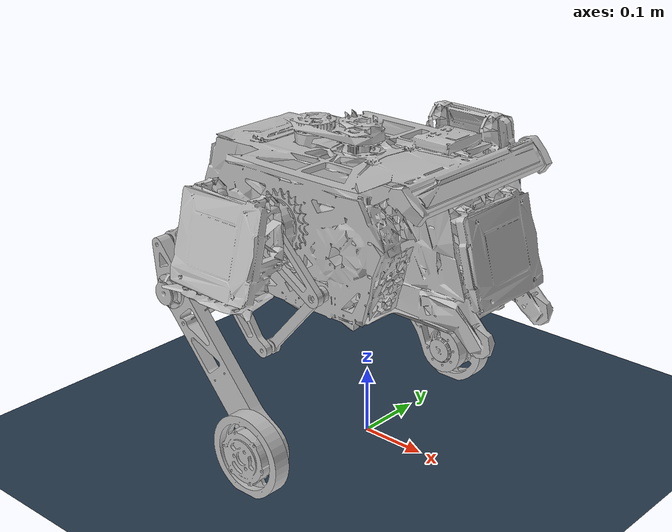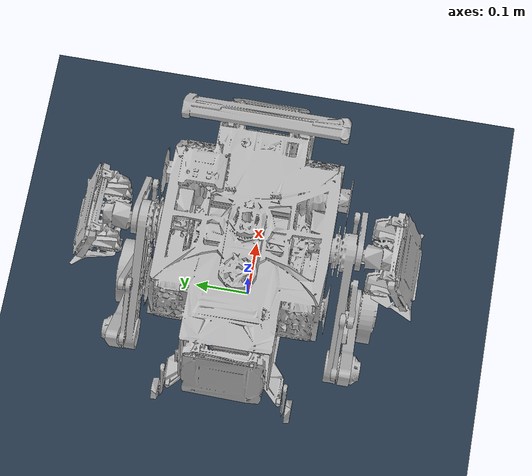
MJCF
<?xml version='1.0' encoding='utf-8'?>
<mujoco model="chuanliantui_closed">
  <!--由 chuanliantui_new_1/urdf/chuanliantui.urdf 生成；真实闭链静态模型。 含气弹簧恒定伸张推力执行器；不含 IMU 或串联策略映射。-->
  <compiler angle="radian" meshdir="../resources/robots/chuanliantui_new_1/meshes" autolimits="true" />
  <option timestep="0.002" gravity="0 0 -9.81" integrator="implicitfast" solver="Newton" iterations="100" tolerance="1e-10" cone="elliptic" impratio="10" />
  <default>
    <joint damping="0" armature="0" frictionloss="0" />
    <geom contype="1" conaffinity="1" condim="3" friction="0.5 0.005 0.0001" />
    <default class="visual">
      <geom type="mesh" contype="0" conaffinity="0" group="2" density="0" />
    </default>
    <default class="collision">
      <geom type="mesh" group="3" contype="1" conaffinity="0" />
    </default>
    <motor ctrllimited="true" />
  </default>
  <asset>
    <mesh name="base_link" file="base_link_simple.STL" />
    <mesh name="lf0" file="rf0.STL" />
    <mesh name="lf00" file="rf00.STL" />
    <mesh name="lf01" file="rf01.STL" />
    <mesh name="lf02" file="rf02.STL" />
    <mesh name="lf03" file="rf03.STL" />
    <mesh name="lf1" file="rf1.STL" />
    <mesh name="lfwheel" file="rfwheel.STL" />
    <mesh name="rf0" file="lf0.STL" />
    <mesh name="rf00" file="lf00.STL" />
    <mesh name="rf01" file="lf01.STL" />
    <mesh name="rf02" file="lf02.STL" />
    <mesh name="rf03" file="lf03.STL" />
    <mesh name="rf1" file="lf1.STL" />
    <mesh name="rfwheel" file="lfwheel.STL" />
    <material name="metal" rgba="0.75 0.75 0.75 1" />
    <texture name="grid" type="2d" builtin="checker" rgb1="0.2 0.3 0.4" rgb2="0.1 0.15 0.2" width="512" height="512" />
    <material name="grid" texture="grid" texrepeat="4 4" reflectance="0.1" />
  </asset>
  <worldbody>
    <light directional="true" pos="0 0 4" dir="0 0 -1" diffuse="0.8 0.8 0.8" />
    <geom name="floor" type="plane" size="20 20 0.1" material="grid" condim="3" friction="0.5 0.005 0.0001" />
    <body name="base_link" pos="0 0 0.35">
      <freejoint name="floating_base" />
      <inertial pos="-0.00602877755221842 0.000229808150438118 -0.00910941310145087" mass="9.25503219054007" fullinertia="0.0180319947363 0.0362971613717 0.0417155474758 -0.000148435002152 3.87836261074e-05 -3.81309965605e-06" />
      <geom class="visual" mesh="base_link" material="metal" />
      <geom class="collision" mesh="base_link" />
      <body name="lf0" pos="-0.0114000000001256 0.176932975540448 0.0235200000001889">
        <joint name="lf0" type="hinge" axis="0 1 0" damping="0.03" frictionloss="0.015" range="-100 100" />
        <inertial pos="-0.059929412590832 -0.00497568108631433 -0.053540218687971" mass="0.843183721447544" fullinertia="0.000862027161716 0.0020484271685 0.00130234764167 3.20465693682e-06 -0.000779607816635 2.10942806215e-06" />
        <geom class="visual" mesh="lf0" material="metal" />
        <geom class="collision" mesh="lf0" />
        <site name="left_front_pin1" pos="-0.0892559140126 0.0164970244596 -0.0699495662158" size="0.004" rgba="1 1 0 1" />
        <site name="left_gas_spring_upper" pos="0.0256060577081 -0.00349999999995 -0.0371052989313" size="0.004" rgba="1 0 0 1" />
        <body name="lf1" pos="-0.165288729653417 0.0114999999999917 -0.129536233732335">
          <joint name="lf1" type="hinge" axis="0 1 0" damping="0.03" frictionloss="0.015" range="-0.77 0.12" />
          <inertial pos="0.0780229590622458 0.0103199473600926 -0.0862619955363456" mass="0.414858419057853" fullinertia="0.00264006392006 0.00449630400849 0.00188319431138 -2.34405638911e-06 0.00206820524894 3.25800440586e-06" />
          <geom class="visual" mesh="lf1" material="metal" />
          <geom class="collision" mesh="lf1" />
          <site name="left_front_pin2" pos="-0.0265322349803 -0.00800297554041 0.0615226828645" size="0.004" rgba="1 1 0 1" />
          <site name="left_gas_spring_lower" pos="0.0196925625458 0.0100000000002 -0.0444643664123" size="0.004" rgba="1 0 0 1" />
          <body name="lfwheel" pos="0.164832478009991 0.0199999999999965 -0.187963438447721">
            <joint name="lfwheel" type="hinge" axis="0 1 0" limited="false" damping="0.002" frictionloss="0.001" />
            <inertial pos="0.000258895715753299 0.0127591454924048 -0.000369429481127753" mass="0.344781890891785" fullinertia="0.000322531613191 0.000620367874493 0.000322776964246 -3.23871644327e-08 -2.34585830897e-06 8.00535601876e-08" />
            <geom class="visual" mesh="lfwheel" material="metal" />
            <geom class="collision" mesh="lfwheel" />
          </body>
        </body>
      </body>
      <body name="rf0" pos="-0.0114000000001232 -0.178572975540517 0.0235199999997">
        <joint name="rf0" type="hinge" axis="0 -1 0" damping="0.03" frictionloss="0.015" range="-100 100" />
        <inertial pos="-0.0599303446620469 0.00497568108572646 -0.0535401395509289" mass="0.843183721447544" fullinertia="0.000862027161496 0.0020484271685 0.00130234764189 -3.20295947234e-06 -0.000779607817918 -2.10957219358e-06" />
        <geom class="visual" mesh="rf0" material="metal" />
        <geom class="collision" mesh="rf0" />
        <site name="right_front_pin1" pos="-0.0892559140126 -0.0164970244594 -0.0699495662158" size="0.004" rgba="1 1 0 1" />
        <site name="right_gas_spring_upper" pos="0.0256060577081 0.00350000000005 -0.0371052989313" size="0.004" rgba="1 0 0 1" />
        <body name="rf1" pos="-0.165288729653418 -0.0115000000014235 -0.129536233732203">
          <joint name="rf1" type="hinge" axis="0 -1 0" damping="0.03" frictionloss="0.015" range="-0.12 0.77" />
          <inertial pos="0.078018324484777 -0.0103199473609263 -0.0862673341064149" mass="0.414858418961741" fullinertia="0.00264096842023 0.00449643859324 0.00188242439596 2.35673588989e-06 0.00206811984718 -3.24560463461e-06" />
          <geom class="visual" mesh="rf1" material="metal" />
          <geom class="collision" mesh="rf1" />
          <site name="right_front_pin2" pos="-0.0265322349803 0.00800297554204 0.0615226828644" size="0.004" rgba="1 1 0 1" />
          <site name="right_gas_spring_lower" pos="0.0196925625458 -0.00999999999834 -0.0444643664125" size="0.004" rgba="1 0 0 1" />
          <body name="rfwheel" pos="0.16483247801054 -0.0280000000020713 -0.187963438447404">
            <joint name="rfwheel" type="hinge" axis="0 -1 0" limited="false" damping="0.002" frictionloss="0.001" />
            <inertial pos="0.000400272099244092 -0.00475914549162054 -0.000274670509450486" mass="0.344781890910713" fullinertia="0.00032267537703 0.000620367874493 0.000322633200408 7.93341927054e-08 -2.34896908748e-06 -3.41113911781e-08" />
            <geom class="visual" mesh="rfwheel" material="metal" />
            <geom class="collision" mesh="rfwheel" />
          </body>
        </body>
      </body>
      <body name="lf00" pos="-0.0114000000001251 0.18795499999997 0.0235200000002041">
        <joint name="lf00" type="hinge" axis="0 1 0" limited="false" damping="0.03" frictionloss="0.015" />
        <inertial pos="0.0287300930886477 0.00217309925781833 -0.0226492653085871" mass="0.108755464967073" fullinertia="9.09875569319e-05 0.000222724145523 0.000133403996798 -6.95628429076e-08 8.83433748701e-05 5.48396164445e-08" />
        <geom class="visual" mesh="lf00" material="metal" />
        <geom class="collision" mesh="lf00" />
        <body name="lf01" pos="0.0890545087133235 -0.0110249999999036 -0.0702058008844835">
          <joint name="lf01" type="hinge" axis="0 1 0" damping="0.03" frictionloss="0.015" range="-3.14 3.14" />
          <inertial pos="-0.0446504423003866 0.000189202771808422 -0.0506220110463802" mass="0.0527615983680123" fullinertia="3.44040667679e-05 6.1085045092e-05 2.70794555801e-05 3.91600237083e-17 -2.91000644184e-05 4.57930837523e-17" />
          <geom class="visual" mesh="lf01" material="metal" />
          <geom class="collision" mesh="lf01" />
          <body name="lf02" pos="-0.0893008846007715 0.0165000000001005 -0.101244022092738">
            <joint name="lf02" type="hinge" axis="0 1 0" damping="0.03" frictionloss="0.015" range="-3.14 3.14" />
            <inertial pos="-0.0707835765672588 -0.000678963352955642 0.0846138697211773" mass="0.131348519233667" fullinertia="0.000258668284245 0.000390303775067 0.000133396478429 -2.36401615329e-16 0.000172315524142 3.52063709972e-16" />
            <geom class="visual" mesh="lf02" material="metal" />
            <geom class="collision" mesh="lf02" />
            <site name="left_rear_pin1" pos="-0.0890095381252 -1.37889699658e-13 0.101500256761" size="0.004" rgba="1 0 0 1" />
            <body name="lf03" pos="-0.115541773105976 -0.0130000000002235 0.163022939626966">
              <joint name="lf03" type="hinge" axis="0 1 0" damping="0.03" frictionloss="0.015" range="-3.14 3.14" />
              <inertial pos="-0.0380164078202833 4.69346783660285E-14 -0.029793333758428" mass="0.0511656410370527" fullinertia="1.55939895831e-05 3.95520545085e-05 2.43190852262e-05 2.37014245892e-17 -1.77228713484e-05 2.04168619846e-17" />
              <geom class="visual" mesh="lf03" material="metal" />
              <geom class="collision" mesh="lf03" />
              <site name="left_rear_pin2" pos="-0.0760328156403 8.26005930321e-14 -0.0595866675176" size="0.004" rgba="1 0 0 1" />
            </body>
          </body>
        </body>
      </body>
      <body name="rf00" pos="-0.0114000000001247 -0.189595000000041 0.023519999999691">
        <joint name="rf00" type="hinge" axis="0 -1 0" limited="false" damping="0.03" frictionloss="0.015" />
        <inertial pos="0.0287300930886472 -0.00217309925803372 -0.0226492653085664" mass="0.108755464967074" fullinertia="9.09875569319e-05 0.000222724145523 0.000133403996798 6.95628437602e-08 8.83433748701e-05 -5.48396173066e-08" />
        <geom class="visual" mesh="rf00" material="metal" />
        <geom class="collision" mesh="rf00" />
        <body name="rf01" pos="0.0890545087133239 0.0110249999992321 -0.0702058008845904">
          <joint name="rf01" type="hinge" axis="0 -1 0" damping="0.03" frictionloss="0.015" range="-3.14 3.14" />
          <inertial pos="-0.0446504423003861 -0.000189202772297822 -0.0506220110463771" mass="0.0527615983680122" fullinertia="3.44040667679e-05 6.1085045092e-05 2.70794555801e-05 -3.20540987492e-16 -2.91000644184e-05 -3.74572243619e-16" />
          <geom class="visual" mesh="rf01" material="metal" />
          <geom class="collision" mesh="rf01" />
          <body name="rf02" pos="-0.0893008846007706 -0.0165000000010802 -0.101244022092578">
            <joint name="rf02" type="hinge" axis="0 -1 0" damping="0.03" frictionloss="0.015" range="-3.14 3.14" />
            <inertial pos="-0.0707835765672591 0.000678963353767797 0.084613869721171" mass="0.131348519233667" fullinertia="0.000258668284245 0.000390303775067 0.000133396478429 1.89740839657e-15 0.000172315524142 -2.82893856391e-15" />
            <geom class="visual" mesh="rf02" material="metal" />
            <geom class="collision" mesh="rf02" />
            <site name="right_rear_pin1" pos="-0.0890095381252 1.98410732288e-12 0.101500256761" size="0.004" rgba="1 0 0 1" />
            <body name="rf03" pos="-0.115541773105979 0.0130000000017961 0.163022939626841">
              <joint name="rf03" type="hinge" axis="0 -1 0" damping="0.03" frictionloss="0.015" range="-3.14 3.14" />
              <inertial pos="-0.0380164078202828 -7.54951656745106E-15 -0.029793333758428" mass="0.0511656410370526" fullinertia="1.55939895831e-05 3.95520545085e-05 2.43190852262e-05 6.62410802011e-19 -1.77228713484e-05 4.96240148893e-19" />
              <geom class="visual" mesh="rf03" material="metal" />
              <geom class="collision" mesh="rf03" />
              <site name="right_rear_pin2" pos="-0.0760328156403 1.8801626922e-13 -0.0595866675175" size="0.004" rgba="1 0 0 1" />
            </body>
          </body>
        </body>
      </body>
    </body>
  </worldbody>
  <equality>
    <connect name="lf_loop1" body1="lf02" body2="lf0" anchor="-0.0890095381252 -1.37889699658e-13 0.101500256761" solref="0.01 1" solimp="0.95 0.99 0.001 0.5 2" />
    <connect name="lf_loop2" body1="lf03" body2="lf1" anchor="-0.0760328156403 8.26005930321e-14 -0.0595866675176" solref="0.01 1" solimp="0.95 0.99 0.001 0.5 2" />
    <connect name="rf_loop1" body1="rf02" body2="rf0" anchor="-0.0890095381252 1.98410732288e-12 0.101500256761" solref="0.01 1" solimp="0.95 0.99 0.001 0.5 2" />
    <connect name="rf_loop2" body1="rf03" body2="rf1" anchor="-0.0760328156403 1.8801626922e-13 -0.0595866675175" solref="0.01 1" solimp="0.95 0.99 0.001 0.5 2" />
  </equality>
  <tendon>
    <!--正执行器力沿 site 连线推开两端，使气弹簧伸长。-->
    <spatial name="right_gas_spring_tendon" width="0.001">
      <site site="right_gas_spring_upper" />
      <site site="right_gas_spring_lower" />
    </spatial>
    <spatial name="left_gas_spring_tendon" width="0.001">
      <site site="left_gas_spring_upper" />
      <site site="left_gas_spring_lower" />
    </spatial>
  </tendon>
  <actuator>
    <motor name="rf0_motor" joint="rf0" gear="1" ctrlrange="-40.0 40.0" />
    <motor name="rf00_motor" joint="rf00" gear="1" ctrlrange="-40.0 40.0" />
    <motor name="rfwheel_motor" joint="rfwheel" gear="1" ctrlrange="-3.9 3.9" />
    <motor name="lf0_motor" joint="lf0" gear="1" ctrlrange="-40.0 40.0" />
    <motor name="lf00_motor" joint="lf00" gear="1" ctrlrange="-40.0 40.0" />
    <motor name="lfwheel_motor" joint="lfwheel" gear="1" ctrlrange="-3.9 3.9" />
    <!--每侧恒定伸张推力由控制端写入，默认 150 N，0 N 关闭。-->
    <motor name="right_gas_spring_motor" tendon="right_gas_spring_tendon" gear="1" ctrlrange="0 150" />
    <motor name="left_gas_spring_motor" tendon="left_gas_spring_tendon" gear="1" ctrlrange="0 150" />
  </actuator>
</mujoco>
